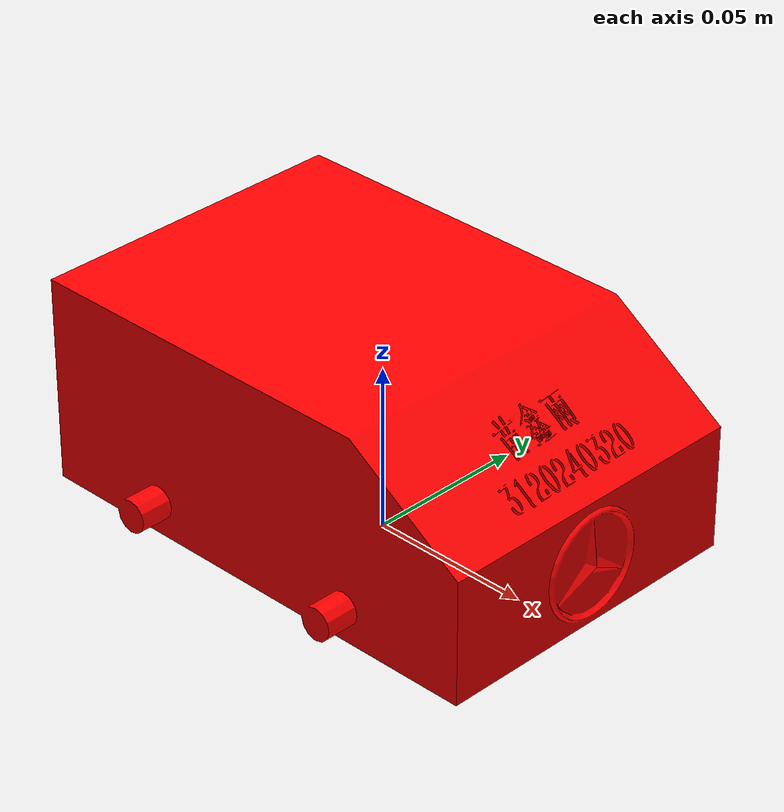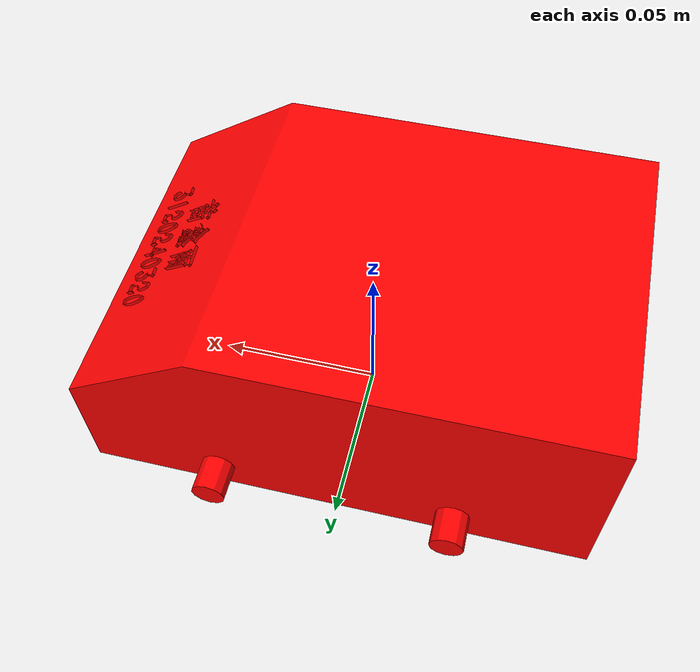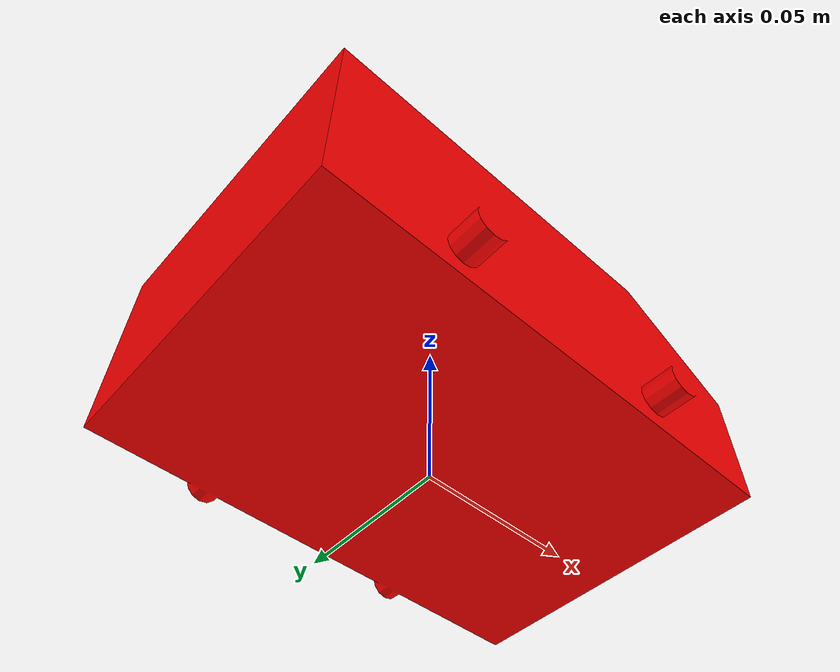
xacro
<?xml version="1.0"?>
<robot xmlns:xacro="http://www.ros.org/wiki/xacro">

  <link name="base_footprint">
  </link>

  <joint name="base_joint" type="fixed">
    <parent link="base_footprint" />
    <child link="base_link" />
    <origin xyz="0.0 0.0 0.005" rpy="0 0 0" />
  </joint>

  <link name="base_link">
    <inertial>
      <origin xyz="-0.0032491 5.2641E-08 0.029973" rpy="0 0 0" />
      <mass value="0.89412" />
      <inertia ixx="0.0010308" ixy="-3.263E-09" ixz="6.9727E-05" iyy="0.0018462" iyz="-7.0323E-10" izz="0.002319" />
    </inertial>
    <visual>
      <origin xyz="0 0 0" rpy="0 0 0" />
      <geometry>
        <mesh filename="file://$(find benz_descripition)/meshes/base_link.STL" />
      </geometry>
      <material name="red">
        <color rgba="1 0 0 1" />
      </material>
    </visual>
    <collision>
      <origin xyz="0 0 0" rpy="0 0 0" />
      <geometry>
        <mesh filename="file://$(find benz_descripition)/meshes/base_link.STL" />
      </geometry>
    </collision>
  </link>
  <gazebo reference="base_link">
    <material>Gazebo/Red</material>
  </gazebo>

</robot>
